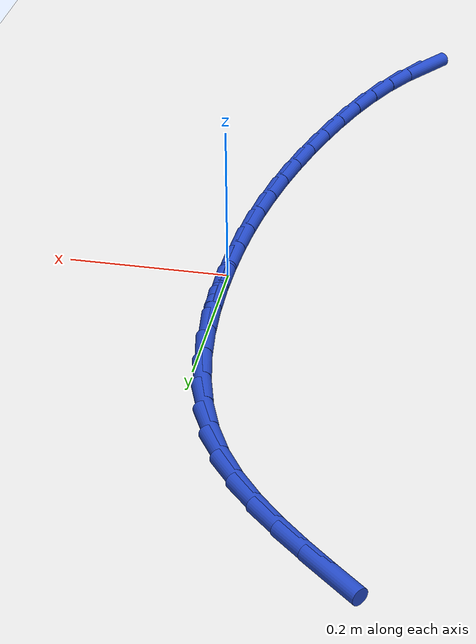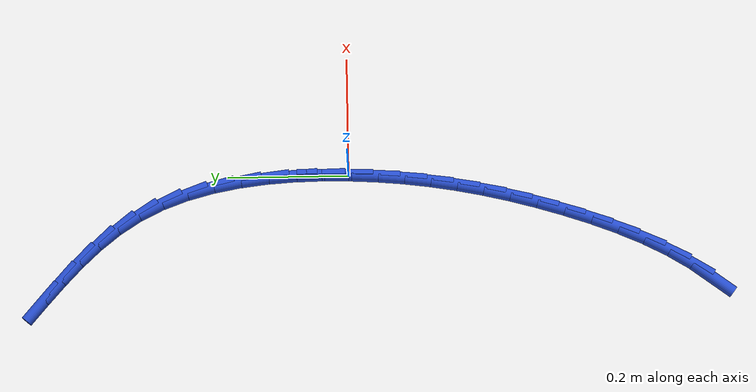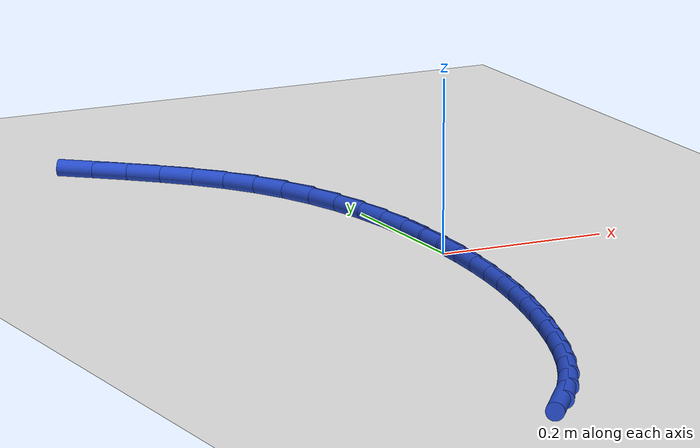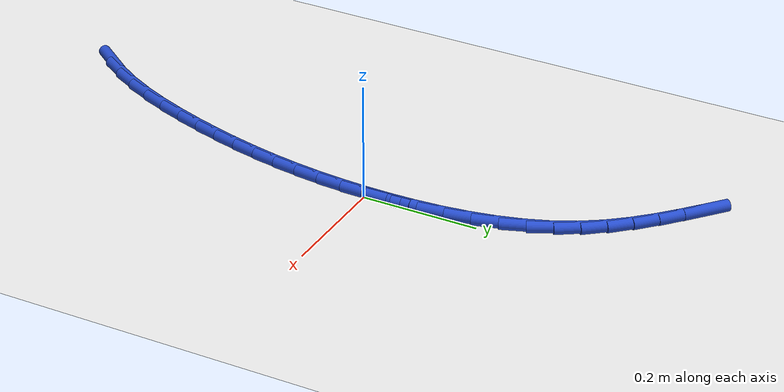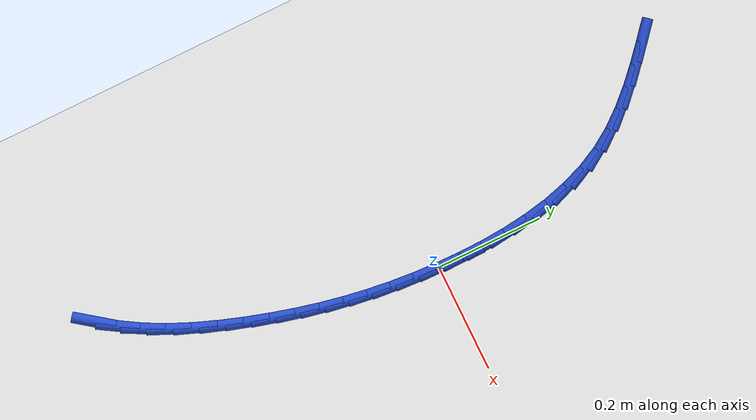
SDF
<sdf version="1.6">
 <world name="default">
  <model name="ground_plane">
   <static>1</static>
   <link name="link">
    <collision name="collision">
     <geometry><plane><normal>0 0 1</normal><size>100 100</size></plane></geometry>
     <surface><friction><ode><mu>100</mu><mu2>50</mu2></ode></friction></surface>
    </collision>
    <visual name="visual">
     <cast_shadows>0</cast_shadows>
     <geometry><plane><normal>0 0 1</normal><size>100 100</size></plane></geometry>
     <material>
      <script><uri>file://media/materials/scripts/gazebo.material</uri><name>Gazebo/WhiteGlow</name></script>
     </material>
    </visual>
   </link>
  </model>
  <model name="line">
   <link name="link_0">
    <pose>1.734723475976807e-17 -1.3877787807814457e-17 0.01 0 1.57 1.5534646225807065</pose>
    <collision name="collision">
     <geometry><cylinder><radius>0.01</radius><length>0.08</length></cylinder></geometry>
    </collision>
    <visual name="visual">
     <material>
      <script><name>Gazebo/Blue</name><uri>file://media/materials/scripts/gazebo.material</uri></script>
     </material>
     <geometry><cylinder><radius>0.01</radius><length>0.08</length></cylinder></geometry>
    </visual>
   </link>
   <link name="link_1">
    <pose>0.0007905198224604647 0.04560663261336693 0.01 0 1.57 -1.547656428910895</pose>
    <collision name="collision">
     <geometry><cylinder><radius>0.01</radius><length>0.08</length></cylinder></geometry>
    </collision>
    <visual name="visual">
     <material>
      <script><name>Gazebo/Blue</name><uri>file://media/materials/scripts/gazebo.material</uri></script>
     </material>
     <geometry><cylinder><radius>0.01</radius><length>0.08</length></cylinder></geometry>
    </visual>
   </link>
   <link name="link_2">
    <pose>-0.00027487836473895756 0.09164002602763777 0.01 0 1.57 -1.5004070499833655</pose>
    <collision name="collision">
     <geometry><cylinder><radius>0.01</radius><length>0.08</length></cylinder></geometry>
    </collision>
    <visual name="visual">
     <material>
      <script><name>Gazebo/Blue</name><uri>file://media/materials/scripts/gazebo.material</uri></script>
     </material>
     <geometry><cylinder><radius>0.01</radius><length>0.08</length></cylinder></geometry>
    </visual>
   </link>
   <link name="link_3">
    <pose>-0.0035137321763687485 0.1375774622547021 0.01 0 1.57 -1.4450293220916655</pose>
    <collision name="collision">
     <geometry><cylinder><radius>0.01</radius><length>0.08</length></cylinder></geometry>
    </collision>
    <visual name="visual">
     <material>
      <script><name>Gazebo/Blue</name><uri>file://media/materials/scripts/gazebo.material</uri></script>
     </material>
     <geometry><cylinder><radius>0.01</radius><length>0.08</length></cylinder></geometry>
    </visual>
   </link>
   <link name="link_4">
    <pose>-0.009243579227199396 0.18289622330644942 0.01 0 1.57 -1.3798754588883804</pose>
    <collision name="collision">
     <geometry><cylinder><radius>0.01</radius><length>0.08</length></cylinder></geometry>
    </collision>
    <visual name="visual">
     <material>
      <script><name>Gazebo/Blue</name><uri>file://media/materials/scripts/gazebo.material</uri></script>
     </material>
     <geometry><cylinder><radius>0.01</radius><length>0.08</length></cylinder></geometry>
    </visual>
   </link>
   <link name="link_5">
    <pose>-0.017781957132001397 0.2270735911947691 0.01 0 1.57 -1.3030140759514017</pose>
    <collision name="collision">
     <geometry><cylinder><radius>0.01</radius><length>0.08</length></cylinder></geometry>
    </collision>
    <visual name="visual">
     <material>
      <script><name>Gazebo/Blue</name><uri>file://media/materials/scripts/gazebo.material</uri></script>
     </material>
     <geometry><cylinder><radius>0.01</radius><length>0.08</length></cylinder></geometry>
    </visual>
   </link>
   <link name="link_6">
    <pose>-0.029446403505545247 0.26958684793155085 0.01 0 1.57 -1.2123378392488025</pose>
    <collision name="collision">
     <geometry><cylinder><radius>0.01</radius><length>0.08</length></cylinder></geometry>
    </collision>
    <visual name="visual">
     <material>
      <script><name>Gazebo/Blue</name><uri>file://media/materials/scripts/gazebo.material</uri></script>
     </material>
     <geometry><cylinder><radius>0.01</radius><length>0.08</length></cylinder></geometry>
    </visual>
   </link>
   <link name="link_7">
    <pose>-0.044554455962601436 0.3099132755286841 0.01 0 1.57 -1.1058755438783705</pose>
    <collision name="collision">
     <geometry><cylinder><radius>0.01</radius><length>0.08</length></cylinder></geometry>
    </collision>
    <visual name="visual">
     <material>
      <script><name>Gazebo/Blue</name><uri>file://media/materials/scripts/gazebo.material</uri></script>
     </material>
     <geometry><cylinder><radius>0.01</radius><length>0.08</length></cylinder></geometry>
    </visual>
   </link>
   <link name="link_8">
    <pose>-0.06342313443116523 0.34753082193411133 0.01 0 1.57 -0.9907278969704408</pose>
    <collision name="collision">
     <geometry><cylinder><radius>0.01</radius><length>0.08</length></cylinder></geometry>
    </collision>
    <visual name="visual">
     <material>
      <script><name>Gazebo/Blue</name><uri>file://media/materials/scripts/gazebo.material</uri></script>
     </material>
     <geometry><cylinder><radius>0.01</radius><length>0.08</length></cylinder></geometry>
    </visual>
   </link>
   <link name="link_9">
    <pose>-0.08614484871546925 0.38220636652388984 0.01 0 1.57 -0.8903932539267831</pose>
    <collision name="collision">
     <geometry><cylinder><radius>0.01</radius><length>0.08</length></cylinder></geometry>
    </collision>
    <visual name="visual">
     <material>
      <script><name>Gazebo/Blue</name><uri>file://media/materials/scripts/gazebo.material</uri></script>
     </material>
     <geometry><cylinder><radius>0.01</radius><length>0.08</length></cylinder></geometry>
    </visual>
   </link>
   <link name="link_10">
    <pose>-0.11223732752382055 0.41444604043608474 0.01 0 1.57 -0.8112891752636585</pose>
    <collision name="collision">
     <geometry><cylinder><radius>0.01</radius><length>0.08</length></cylinder></geometry>
    </collision>
    <visual name="visual">
     <material>
      <script><name>Gazebo/Blue</name><uri>file://media/materials/scripts/gazebo.material</uri></script>
     </material>
     <geometry><cylinder><radius>0.01</radius><length>0.08</length></cylinder></geometry>
    </visual>
   </link>
   <link name="link_11">
    <pose>-0.14112769551556953 0.4448725250194977 0.01 0 1.57 -0.7542671647679721</pose>
    <collision name="collision">
     <geometry><cylinder><radius>0.01</radius><length>0.08</length></cylinder></geometry>
    </collision>
    <visual name="visual">
     <material>
      <script><name>Gazebo/Blue</name><uri>file://media/materials/scripts/gazebo.material</uri></script>
     </material>
     <geometry><cylinder><radius>0.01</radius><length>0.08</length></cylinder></geometry>
    </visual>
   </link>
   <link name="link_12">
    <pose>-0.17224307735006647 0.4741085016229301 0.01 0 1.57 -0.7187707049857153</pose>
    <collision name="collision">
     <geometry><cylinder><radius>0.01</radius><length>0.08</length></cylinder></geometry>
    </collision>
    <visual name="visual">
     <material>
      <script><name>Gazebo/Blue</name><uri>file://media/materials/scripts/gazebo.material</uri></script>
     </material>
     <geometry><cylinder><radius>0.01</radius><length>0.08</length></cylinder></geometry>
    </visual>
   </link>
   <link name="link_13">
    <pose>-0.20501059768666172 0.5027766515951835 0.01 0 1.57 -0.7036914518162153</pose>
    <collision name="collision">
     <geometry><cylinder><radius>0.01</radius><length>0.08</length></cylinder></geometry>
    </collision>
    <visual name="visual">
     <material>
      <script><name>Gazebo/Blue</name><uri>file://media/materials/scripts/gazebo.material</uri></script>
     </material>
     <geometry><cylinder><radius>0.01</radius><length>0.08</length></cylinder></geometry>
    </visual>
   </link>
   <link name="link_166">
    <pose>-0.18304309810470742 -0.5939302878530203 0.01 0 1.57 0.9284796635569303</pose>
    <collision name="collision">
     <geometry><cylinder><radius>0.01</radius><length>0.08</length></cylinder></geometry>
    </collision>
    <visual name="visual">
     <material>
      <script><name>Gazebo/Blue</name><uri>file://media/materials/scripts/gazebo.material</uri></script>
     </material>
     <geometry><cylinder><radius>0.01</radius><length>0.08</length></cylinder></geometry>
    </visual>
   </link>
   <link name="link_167">
    <pose>-0.15698597788386012 -0.5591015940226995 0.01 0 1.57 1.0226963038532992</pose>
    <collision name="collision">
     <geometry><cylinder><radius>0.01</radius><length>0.08</length></cylinder></geometry>
    </collision>
    <visual name="visual">
     <material>
      <script><name>Gazebo/Blue</name><uri>file://media/materials/scripts/gazebo.material</uri></script>
     </material>
     <geometry><cylinder><radius>0.01</radius><length>0.08</length></cylinder></geometry>
    </visual>
   </link>
   <link name="link_168">
    <pose>-0.13359499888917487 -0.5207867604003088 0.01 0 1.57 1.0986179801634977</pose>
    <collision name="collision">
     <geometry><cylinder><radius>0.01</radius><length>0.08</length></cylinder></geometry>
    </collision>
    <visual name="visual">
     <material>
      <script><name>Gazebo/Blue</name><uri>file://media/materials/scripts/gazebo.material</uri></script>
     </material>
     <geometry><cylinder><radius>0.01</radius><length>0.08</length></cylinder></geometry>
    </visual>
   </link>
   <link name="link_169">
    <pose>-0.11265638320461253 -0.4797876770168809 0.01 0 1.57 1.1595726817367078</pose>
    <collision name="collision">
     <geometry><cylinder><radius>0.01</radius><length>0.08</length></cylinder></geometry>
    </collision>
    <visual name="visual">
     <material>
      <script><name>Gazebo/Blue</name><uri>file://media/materials/scripts/gazebo.material</uri></script>
     </material>
     <geometry><cylinder><radius>0.01</radius><length>0.08</length></cylinder></geometry>
    </visual>
   </link>
   <link name="link_170">
    <pose>-0.09395635291413337 -0.43690623390344596 0.01 0 1.57 1.2082518011003665</pose>
    <collision name="collision">
     <geometry><cylinder><radius>0.01</radius><length>0.08</length></cylinder></geometry>
    </collision>
    <visual name="visual">
     <material>
      <script><name>Gazebo/Blue</name><uri>file://media/materials/scripts/gazebo.material</uri></script>
     </material>
     <geometry><cylinder><radius>0.01</radius><length>0.08</length></cylinder></geometry>
    </visual>
   </link>
   <link name="link_171">
    <pose>-0.077281130101699 -0.3929443210910384 0.01 0 1.57 1.246660130205858</pose>
    <collision name="collision">
     <geometry><cylinder><radius>0.01</radius><length>0.08</length></cylinder></geometry>
    </collision>
    <visual name="visual">
     <material>
      <script><name>Gazebo/Blue</name><uri>file://media/materials/scripts/gazebo.material</uri></script>
     </material>
     <geometry><cylinder><radius>0.01</radius><length>0.08</length></cylinder></geometry>
    </visual>
   </link>
   <link name="link_172">
    <pose>-0.062416936851269644 -0.3487038286106887 0.01 0 1.57 1.2772535346687868</pose>
    <collision name="collision">
     <geometry><cylinder><radius>0.01</radius><length>0.08</length></cylinder></geometry>
    </collision>
    <visual name="visual">
     <material>
      <script><name>Gazebo/Blue</name><uri>file://media/materials/scripts/gazebo.material</uri></script>
     </material>
     <geometry><cylinder><radius>0.01</radius><length>0.08</length></cylinder></geometry>
    </visual>
   </link>
   <link name="link_173">
    <pose>-0.049171405317046155 -0.3048843783601601 0.01 0 1.57 1.3075226040358248</pose>
    <collision name="collision">
     <geometry><cylinder><radius>0.01</radius><length>0.08</length></cylinder></geometry>
    </collision>
    <visual name="visual">
     <material>
      <script><name>Gazebo/Blue</name><uri>file://media/materials/scripts/gazebo.material</uri></script>
     </material>
     <geometry><cylinder><radius>0.01</radius><length>0.08</length></cylinder></geometry>
    </visual>
   </link>
   <link name="link_174">
    <pose>-0.03748796691133158 -0.26153692847900684 0.01 0 1.57 1.3399512882270037</pose>
    <collision name="collision">
     <geometry><cylinder><radius>0.01</radius><length>0.08</length></cylinder></geometry>
    </collision>
    <visual name="visual">
     <material>
      <script><name>Gazebo/Blue</name><uri>file://media/materials/scripts/gazebo.material</uri></script>
     </material>
     <geometry><cylinder><radius>0.01</radius><length>0.08</length></cylinder></geometry>
    </visual>
   </link>
   <link name="link_175">
    <pose>-0.02736312924535993 -0.21845891137217213 0.01 0 1.57 1.3741327911143817</pose>
    <collision name="collision">
     <geometry><cylinder><radius>0.01</radius><length>0.08</length></cylinder></geometry>
    </collision>
    <visual name="visual">
     <material>
      <script><name>Gazebo/Blue</name><uri>file://media/materials/scripts/gazebo.material</uri></script>
     </material>
     <geometry><cylinder><radius>0.01</radius><length>0.08</length></cylinder></geometry>
    </visual>
   </link>
   <link name="link_176">
    <pose>-0.01879352226165548 -0.17544717511243293 0.01 0 1.57 1.4095667432090604</pose>
    <collision name="collision">
     <geometry><cylinder><radius>0.01</radius><length>0.08</length></cylinder></geometry>
    </collision>
    <visual name="visual">
     <material>
      <script><name>Gazebo/Blue</name><uri>file://media/materials/scripts/gazebo.material</uri></script>
     </material>
     <geometry><cylinder><radius>0.01</radius><length>0.08</length></cylinder></geometry>
    </visual>
   </link>
   <link name="link_177">
    <pose>-0.011775775902742988 -0.13229856777256885 0.01 0 1.57 1.4456902506544882</pose>
    <collision name="collision">
     <geometry><cylinder><radius>0.01</radius><length>0.08</length></cylinder></geometry>
    </collision>
    <visual name="visual">
     <material>
      <script><name>Gazebo/Blue</name><uri>file://media/materials/scripts/gazebo.material</uri></script>
     </material>
     <geometry><cylinder><radius>0.01</radius><length>0.08</length></cylinder></geometry>
    </visual>
   </link>
   <link name="link_178">
    <pose>-0.006306520111146631 -0.08880993742535678 0.01 0 1.57 1.4819106816901355</pose>
    <collision name="collision">
     <geometry><cylinder><radius>0.01</radius><length>0.08</length></cylinder></geometry>
    </collision>
    <visual name="visual">
     <material>
      <script><name>Gazebo/Blue</name><uri>file://media/materials/scripts/gazebo.material</uri></script>
     </material>
     <geometry><cylinder><radius>0.01</radius><length>0.08</length></cylinder></geometry>
    </visual>
   </link>
   <link name="link_179">
    <pose>-0.0023823848293908372 -0.044778132143574643 0.01 0 1.57 1.5176422402597147</pose>
    <collision name="collision">
     <geometry><cylinder><radius>0.01</radius><length>0.08</length></cylinder></geometry>
    </collision>
    <visual name="visual">
     <material>
      <script><name>Gazebo/Blue</name><uri>file://media/materials/scripts/gazebo.material</uri></script>
     </material>
     <geometry><cylinder><radius>0.01</radius><length>0.08</length></cylinder></geometry>
    </visual>
   </link>
   <link name="link_180">
    <pose>-9.540979117872439e-18 -2.0816681711721685e-16 0.01 0 1.57 1.5523412053733459</pose>
    <collision name="collision">
     <geometry><cylinder><radius>0.01</radius><length>0.08</length></cylinder></geometry>
    </collision>
    <visual name="visual">
     <material>
      <script><name>Gazebo/Blue</name><uri>file://media/materials/scripts/gazebo.material</uri></script>
     </material>
     <geometry><cylinder><radius>0.01</radius><length>0.08</length></cylinder></geometry>
    </visual>
   </link>
   <link name="link_181">
    <pose>0.000844004434501458 0.04572761093258866 0.01 0 1.57 1.5523412053733463</pose>
    <collision name="collision">
     <geometry><cylinder><radius>0.01</radius><length>0.08</length></cylinder></geometry>
    </collision>
    <visual name="visual">
     <material>
      <script><name>Gazebo/Blue</name><uri>file://media/materials/scripts/gazebo.material</uri></script>
     </material>
     <geometry><cylinder><radius>0.01</radius><length>0.08</length></cylinder></geometry>
    </visual>
   </link>
  </model>
 </world>
</sdf>
